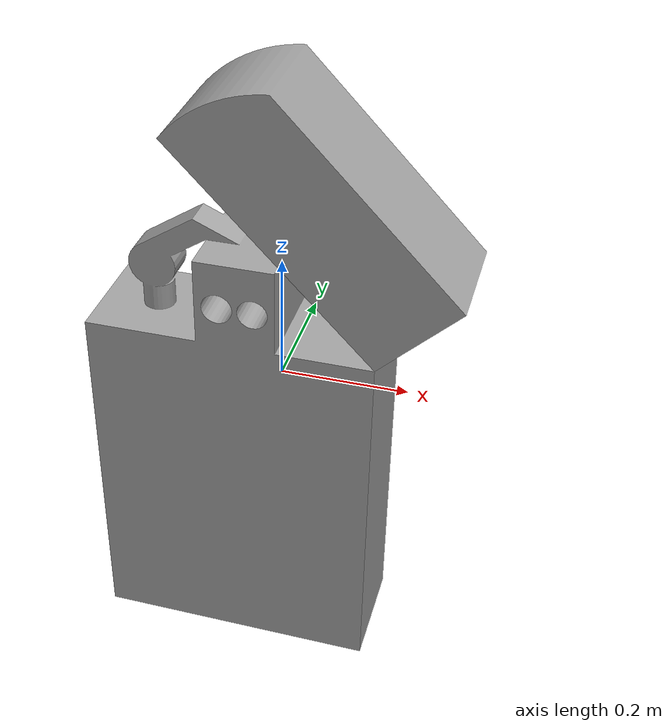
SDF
<?xml version="1.0" ?>
<sdf version="1.5">
  <model name='lighter7'>
    <pose>0 0 0 0 0 0</pose>
    <static>1</static>
    <link name='body'>
      <collision name="lighter7-coll">
        <pose>0 0 -0.5 0 0 0</pose>
        <geometry>
          <mesh>
            <uri>model://lighter7/meshes/lighter7.dae</uri>
          </mesh>
        </geometry>
      </collision>
      <visual name='lighter7'>
        <cast_shadows>1</cast_shadows>
        <pose>0 0 -0.5 0 0 0</pose>
        <geometry>
          <mesh>
            <uri>model://lighter7/meshes/lighter7.dae</uri>
          </mesh>
        </geometry>
      </visual>
      <velocity_decay>
        <linear>0</linear>
        <angular>0</angular>
      </velocity_decay>
      <self_collide>0</self_collide>
      <kinematic>0</kinematic>
      <gravity>1</gravity>
    </link>
  </model>

</sdf>
